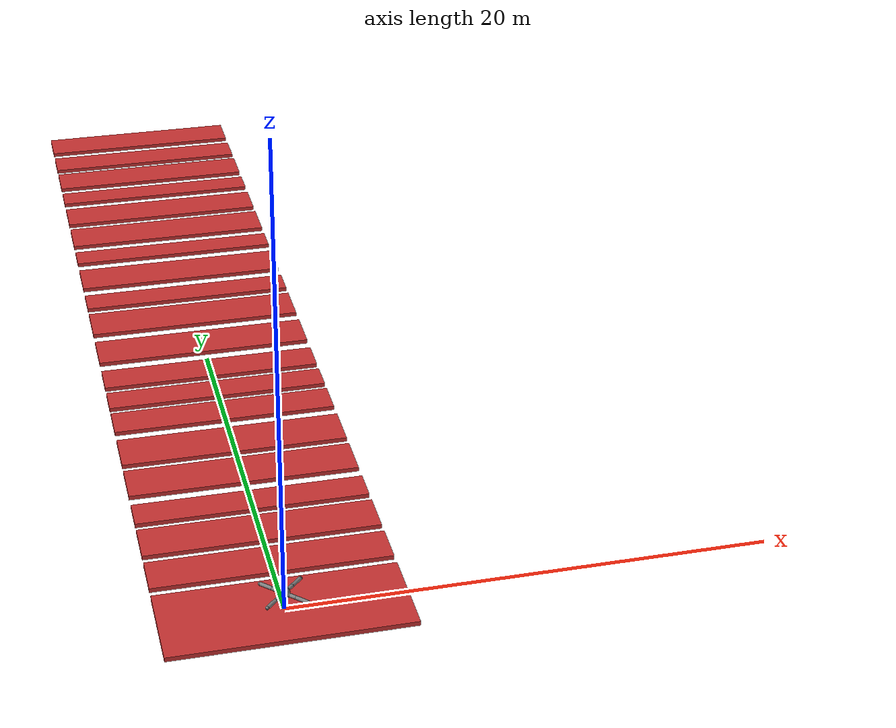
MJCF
<mujoco model="ant_maze">
  <compiler angle="degree" coordinate="local" inertiafromgeom="true"/>
  <option timestep="0.01" iterations="4" />
  <custom>
    <!-- brax custom params -->
    <numeric data="0 0 0.55 1.0 0.0 0.0 0.0 0.0 1.0 0.0 1.0 0.0 1.0 0.0 1.0" name="init_qpos"/>
    <numeric data="1000" name="constraint_limit_stiffness"/>
    <numeric data="4000" name="constraint_stiffness"/>
    <numeric data="10" name="constraint_ang_damping"/>
    <numeric data="20" name="constraint_vel_damping"/>
    <numeric data="0.5" name="joint_scale_pos"/>
    <numeric data="0.2" name="joint_scale_ang"/>
    <numeric data="0.0" name="ang_damping"/>
    <numeric data="1" name="spring_mass_scale"/>
    <numeric data="1" name="spring_inertia_scale"/>
    <numeric data="15" name="solver_maxls"/>
  </custom>
  <default>
    <joint armature="1" damping="1" limited="true"/>
    <geom contype="0" conaffinity="0" condim="3" density="5.0" friction="1 0.5 0.5"/>
  </default>
  <asset>
    <texture builtin="gradient" height="100" rgb1="1 1 1" rgb2="0 0 0" type="skybox" width="100"/>
    <texture builtin="flat" height="1278" mark="cross" markrgb="1 1 1" name="texgeom" random="0.01" rgb1="0.8 0.6 0.4" rgb2="0.8 0.6 0.4" type="cube" width="127"/>
    <texture builtin="checker" height="100" name="texplane" rgb1="0 0 0" rgb2="0.8 0.8 0.8" type="2d" width="100"/>
    <material name="MatPlane" reflectance="0.5" shininess="1" specular="1" texrepeat="60 60" texture="texplane"/>
    <material name="geom" texture="texgeom" texuniform="true"/>
  </asset>
  <contact>
    <exclude body1="torso" body2="torso"/>
    <exclude body1="torso" body2="aux_1"/>
    <exclude body1="aux_1" body2="aux_5"/>
    <exclude body1="torso" body2="aux_2"/>
    <exclude body1="aux_2" body2="aux_6"/>
    <exclude body1="torso" body2="aux_3"/>
    <exclude body1="aux_3" body2="aux_7"/>
    <exclude body1="torso" body2="aux_4"/>
    <exclude body1="aux_4" body2="aux_8"/>
  </contact>
  <worldbody>
    <light cutoff="100" diffuse="1 1 1" dir="-0 0 -1.3" directional="true" exponent="1" pos="0 0 1.3" specular=".1 .1 .1"/>

    <!-- environment -->
	 	<geom conaffinity="1" condim="3" rgba="0.8 0.2 0.2 1" size="5 2.0 0.1" pos="0 0 -0.1" type="box"/>
	 	<geom conaffinity="1" condim="3" rgba="0.8 0.2 0.2 1" size="5 0.9 0.1" pos="0 3.38 -0.1" type="box"/>
	 	<geom conaffinity="1" condim="3" rgba="0.8 0.2 0.2 1" size="5 0.95 0.1" pos="0 5.69 -0.1" type="box"/>
	 	<geom conaffinity="1" condim="3" rgba="0.8 0.2 0.2 1" size="5 0.72 0.1" pos="0 7.8 -0.1" type="box"/>
	 	<geom conaffinity="1" condim="3" rgba="0.8 0.2 0.2 1" size="5 1.0 0.1" pos="0 10.2 -0.1" type="box"/>
	 	<geom conaffinity="1" condim="3" rgba="0.8 0.2 0.2 1" size="5 1.04 0.1" pos="0 12.72 -0.1" type="box"/>
	 	<geom conaffinity="1" condim="3" rgba="0.8 0.2 0.2 1" size="5 0.82 0.1" pos="0 15.26 -0.1" type="box"/>
	 	<geom conaffinity="1" condim="3" rgba="0.8 0.2 0.2 1" size="5 0.69 0.1" pos="0 17.23 -0.1" type="box"/>
	 	<geom conaffinity="1" condim="3" rgba="0.8 0.2 0.2 1" size="5 0.79 0.1" pos="0 19.19 -0.1" type="box"/>
	 	<geom conaffinity="1" condim="3" rgba="0.8 0.2 0.2 1" size="5 1.03 0.1" pos="0 21.79 -0.1" type="box"/>
	 	<geom conaffinity="1" condim="3" rgba="0.8 0.2 0.2 1" size="5 1.05 0.1" pos="0 24.63 -0.1" type="box"/>
	 	<geom conaffinity="1" condim="3" rgba="0.8 0.2 0.2 1" size="5 0.7 0.1" pos="0 26.96 -0.1" type="box"/>
	 	<geom conaffinity="1" condim="3" rgba="0.8 0.2 0.2 1" size="5 1.02 0.1" pos="0 29.46 -0.1" type="box"/>
	 	<geom conaffinity="1" condim="3" rgba="0.8 0.2 0.2 1" size="5 0.65 0.1" pos="0 31.91 -0.1" type="box"/>
	 	<geom conaffinity="1" condim="3" rgba="0.8 0.2 0.2 1" size="5 1.02 0.1" pos="0 34.3 -0.1" type="box"/>
	 	<geom conaffinity="1" condim="3" rgba="0.8 0.2 0.2 1" size="5 0.96 0.1" pos="0 36.88 -0.1" type="box"/>
	 	<geom conaffinity="1" condim="3" rgba="0.8 0.2 0.2 1" size="5 0.66 0.1" pos="0 39.22 -0.1" type="box"/>
	 	<geom conaffinity="1" condim="3" rgba="0.8 0.2 0.2 1" size="5 0.95 0.1" pos="0 41.51 -0.1" type="box"/>
	 	<geom conaffinity="1" condim="3" rgba="0.8 0.2 0.2 1" size="5 0.82 0.1" pos="0 43.88 -0.1" type="box"/>
	 	<geom conaffinity="1" condim="3" rgba="0.8 0.2 0.2 1" size="5 0.96 0.1" pos="0 46.38 -0.1" type="box"/>
    <!-- ant -->
    <body name="torso" pos="0 0 0.75">
      <camera name="track" mode="trackcom" pos="0 -3 0.3" xyaxes="1 0 0 0 0 1"/>
      <geom name="torso_geom" contype="1" pos="0 0 0" size="0.25" type="sphere"/>
      <joint armature="0" damping="0" limited="false" margin="0.01" name="root" pos="0 0 0" type="free"/>
      <body name="front_left_leg" pos="0 0 0">
        <geom fromto="0.0 0.0 0.0 0.2 0.2 0.0" name="aux_1_geom" size="0.08" type="capsule"/>
        <body name="aux_1" pos="0.4 0.4 0">
          <joint axis="0 0 1" name="hip_1" pos="-0.2 -0.2 0.0" range="-30 30" type="hinge"/>
          <geom fromto="0.0 0.0 0.0 -0.2 -0.2 0.0" name="left_leg_geom" size="0.08" type="capsule"/>
          <geom name="left_hip_geom" contype="1" pos="0 0 0" size="0.08" type="sphere" mass="0"/>
          <body name="aux_5" pos="0.4 0.4 0">
            <joint axis="-1 1 0" name="ankle_1" pos="-0.4 -0.4 0.0" range="30 70" type="hinge"/>
            <geom fromto="0.0 0.0 0.0 -0.4 -0.4 0.0" name="left_ankle_geom" contype="1" size="0.08" type="capsule"/>
            <geom name="left_foot_geom" contype="1" pos="0 0 0" size="0.08" type="sphere" mass="0"/>
          </body>
        </body>
      </body>
      <body name="front_right_leg" pos="0 0 0">
        <geom fromto="0.0 0.0 0.0 -0.2 0.2 0.0" name="aux_2_geom" size="0.08" type="capsule"/>
        <body name="aux_2" pos="-0.4 0.4 0" euler = "0 0 90">
          <joint axis="0 0 1" name="hip_2" pos="-0.2 -0.2 0.0" range="-30 30" type="hinge"/>
          <geom fromto="0.0 0.0 0.0 -0.2 -0.2 0.0" name="right_leg_geom" size="0.08" type="capsule"/>
          <geom name="right_hip_geom" contype="1" pos="0 0 0" size="0.08" type="sphere" mass="0"/>
          <body name="aux_6" pos="0.4 0.4 0">
            <joint axis="-1 1 0" name="ankle_2" pos="-0.4 -0.4 0.0" range="30 70" type="hinge"/>
            <geom fromto="0.0 0.0 0.0 -0.4 -0.4 0.0" name="right_ankle_geom" contype="1" size="0.08" type="capsule"/>
            <geom name="right_foot_geom" contype="1" pos="0 0 0" size="0.08" type="sphere" mass="0"/>
          </body>
        </body>
      </body>
      <body name="back_leg" pos="0 0 0">
        <geom fromto="0.0 0.0 0.0 -0.2 -0.2 0.0" name="aux_3_geom" size="0.08" type="capsule"/>
        <body name="aux_3" pos="-0.4 -0.4 0" euler = "0 0 180">
          <joint axis="0 0 1" name="hip_3" pos="-0.2 -0.2 0.0" range="-30 30" type="hinge"/>
          <geom fromto="0.0 0.0 0.0 -0.2 -0.2 0.0" name="back_leg_geom" size="0.08" type="capsule"/>
          <geom name="third_hip_geom" contype="1" pos="0 0 0" size="0.08" type="sphere" mass="0"/>
          <body name="aux_7" pos="0.4 0.4 0">
            <joint axis="-1 1 0" name="ankle_3" pos="-0.4 -0.4 0.0" range="30 70" type="hinge"/>
            <geom fromto="0.0 0.0 0.0 -0.4 -0.4 0.0" name="third_ankle_geom" contype="1" size="0.08" type="capsule"/>
            <geom name="third_foot_geom" contype="1" pos="0 0 0" size="0.08" type="sphere" mass="0"/>
          </body>
        </body>
      </body>
      <body name="right_back_leg" pos="0 0 0">
        <geom fromto="0.0 0.0 0.0 0.2 -0.2 0.0" name="aux_4_geom" size="0.08" type="capsule"/>
        <body name="aux_4" pos="0.4 -0.4 0" euler="0 0 270">
          <joint axis="0 0 1" name="hip_4" pos="-0.2 -0.2 0.0" range="-30 30" type="hinge"/>
          <geom fromto="0.0 0.0 0.0 -0.2 -0.2 0.0" name="rightback_leg_geom" size="0.08" type="capsule"/>
          <geom name="fourth_hip_geom" contype="1" pos="0 0 0" size="0.08" type="sphere" mass="0"/>
          <body name="aux_8" pos="0.4 0.4 0">
            <joint axis="-1 1 0" name="ankle_4" pos="-0.4 -0.4 0.0" range="30 70" type="hinge"/>
            <geom fromto="0.0 0.0 0.0 -0.4 -0.4 0.0" name="fourth_ankle_geom" contype="1" size="0.08" type="capsule"/>
            <geom name="fourth_foot_geom" contype="1" pos="0 0 0" size="0.08" type="sphere" mass="0"/>
          </body>
        </body>
      </body>
    </body>
  </worldbody>
  <actuator>
    <motor ctrllimited="true" ctrlrange="-1.0 1.0" joint="hip_1" gear="150"/>
    <motor ctrllimited="true" ctrlrange="-1.0 1.0" joint="ankle_1" gear="150"/>
    <motor ctrllimited="true" ctrlrange="-1.0 1.0" joint="hip_2" gear="150"/>
    <motor ctrllimited="true" ctrlrange="-1.0 1.0" joint="ankle_2" gear="150"/>
    <motor ctrllimited="true" ctrlrange="-1.0 1.0" joint="hip_3" gear="150"/>
    <motor ctrllimited="true" ctrlrange="-1.0 1.0" joint="ankle_3" gear="150"/>
    <motor ctrllimited="true" ctrlrange="-1.0 1.0" joint="hip_4" gear="150"/>
    <motor ctrllimited="true" ctrlrange="-1.0 1.0" joint="ankle_4" gear="150"/>
  </actuator>
</mujoco>
